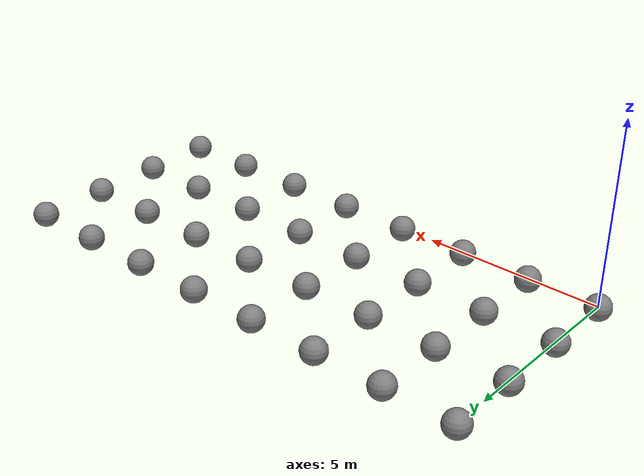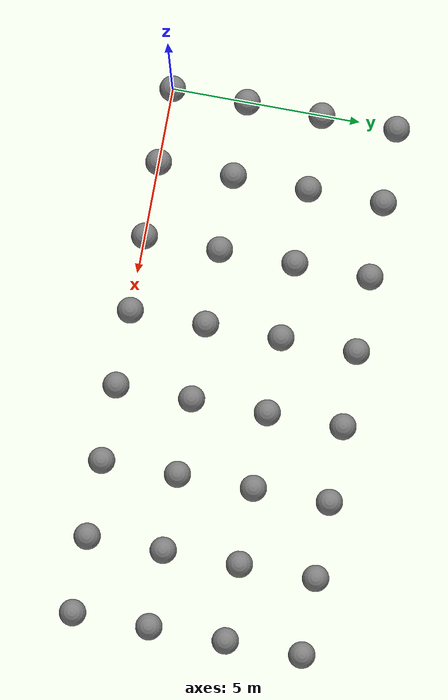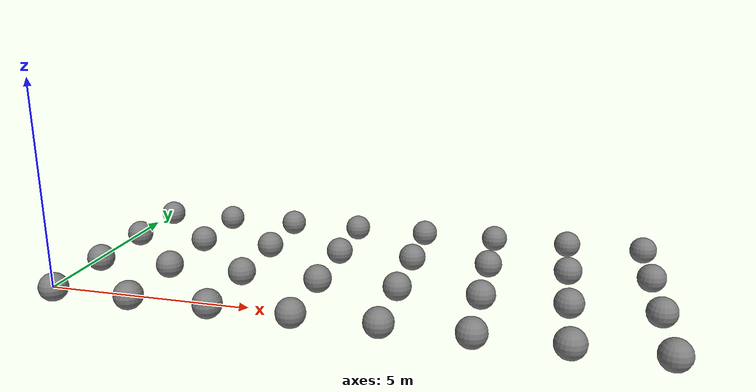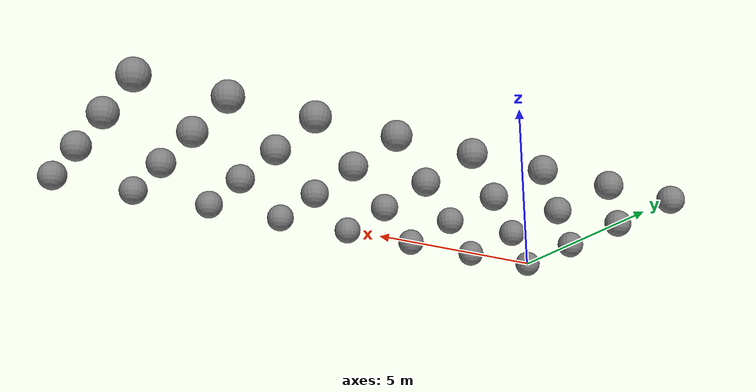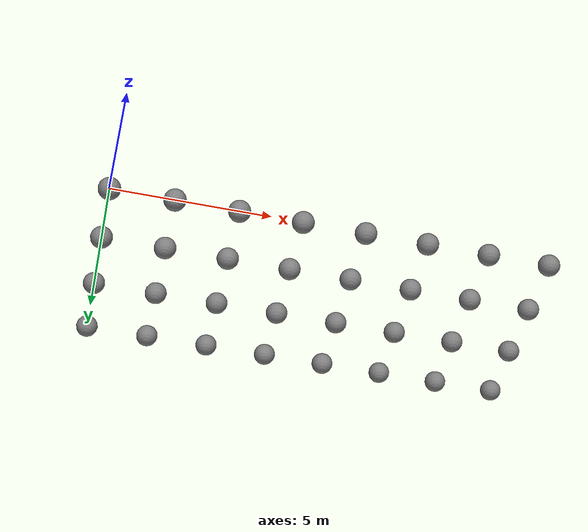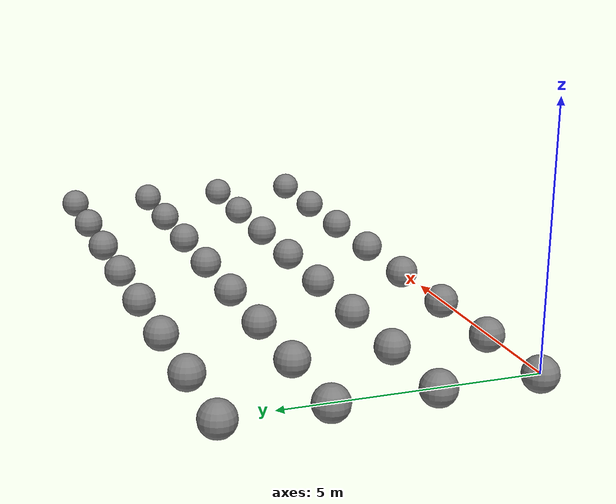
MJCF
<mujoco><option ccd_iterations="100"/><worldbody><body pos="0 0 0"><freejoint/><geom type="sphere" size=".35 .4 .45"/></body><body pos="2 0 0"><freejoint/><geom type="sphere" size=".35 .4 .45"/></body><body pos="4 0 0"><freejoint/><geom type="sphere" size=".35 .4 .45"/></body><body pos="6 0 0"><freejoint/><geom type="sphere" size=".35 .4 .45"/></body><body pos="8 0 0"><freejoint/><geom type="sphere" size=".35 .4 .45"/></body><body pos="10 0 0"><freejoint/><geom type="sphere" size=".35 .4 .45"/></body><body pos="12 0 0"><freejoint/><geom type="sphere" size=".35 .4 .45"/></body><body pos="14 0 0"><freejoint/><geom type="sphere" size=".35 .4 .45"/></body><body pos="0 2 0"><freejoint/><geom type="sphere" size=".35 .4 .45"/></body><body pos="2 2 0"><freejoint/><geom type="sphere" size=".35 .4 .45"/></body><body pos="4 2 0"><freejoint/><geom type="sphere" size=".35 .4 .45"/></body><body pos="6 2 0"><freejoint/><geom type="sphere" size=".35 .4 .45"/></body><body pos="8 2 0"><freejoint/><geom type="sphere" size=".35 .4 .45"/></body><body pos="10 2 0"><freejoint/><geom type="sphere" size=".35 .4 .45"/></body><body pos="12 2 0"><freejoint/><geom type="sphere" size=".35 .4 .45"/></body><body pos="14 2 0"><freejoint/><geom type="sphere" size=".35 .4 .45"/></body><body pos="0 4 0"><freejoint/><geom type="sphere" size=".35 .4 .45"/></body><body pos="2 4 0"><freejoint/><geom type="sphere" size=".35 .4 .45"/></body><body pos="4 4 0"><freejoint/><geom type="sphere" size=".35 .4 .45"/></body><body pos="6 4 0"><freejoint/><geom type="sphere" size=".35 .4 .45"/></body><body pos="8 4 0"><freejoint/><geom type="sphere" size=".35 .4 .45"/></body><body pos="10 4 0"><freejoint/><geom type="sphere" size=".35 .4 .45"/></body><body pos="12 4 0"><freejoint/><geom type="sphere" size=".35 .4 .45"/></body><body pos="14 4 0"><freejoint/><geom type="sphere" size=".35 .4 .45"/></body><body pos="0 6 0"><freejoint/><geom type="sphere" size=".35 .4 .45"/></body><body pos="2 6 0"><freejoint/><geom type="sphere" size=".35 .4 .45"/></body><body pos="4 6 0"><freejoint/><geom type="sphere" size=".35 .4 .45"/></body><body pos="6 6 0"><freejoint/><geom type="sphere" size=".35 .4 .45"/></body><body pos="8 6 0"><freejoint/><geom type="sphere" size=".35 .4 .45"/></body><body pos="10 6 0"><freejoint/><geom type="sphere" size=".35 .4 .45"/></body><body pos="12 6 0"><freejoint/><geom type="sphere" size=".35 .4 .45"/></body><body pos="14 6 0"><freejoint/><geom type="sphere" size=".35 .4 .45"/></body></worldbody></mujoco>
